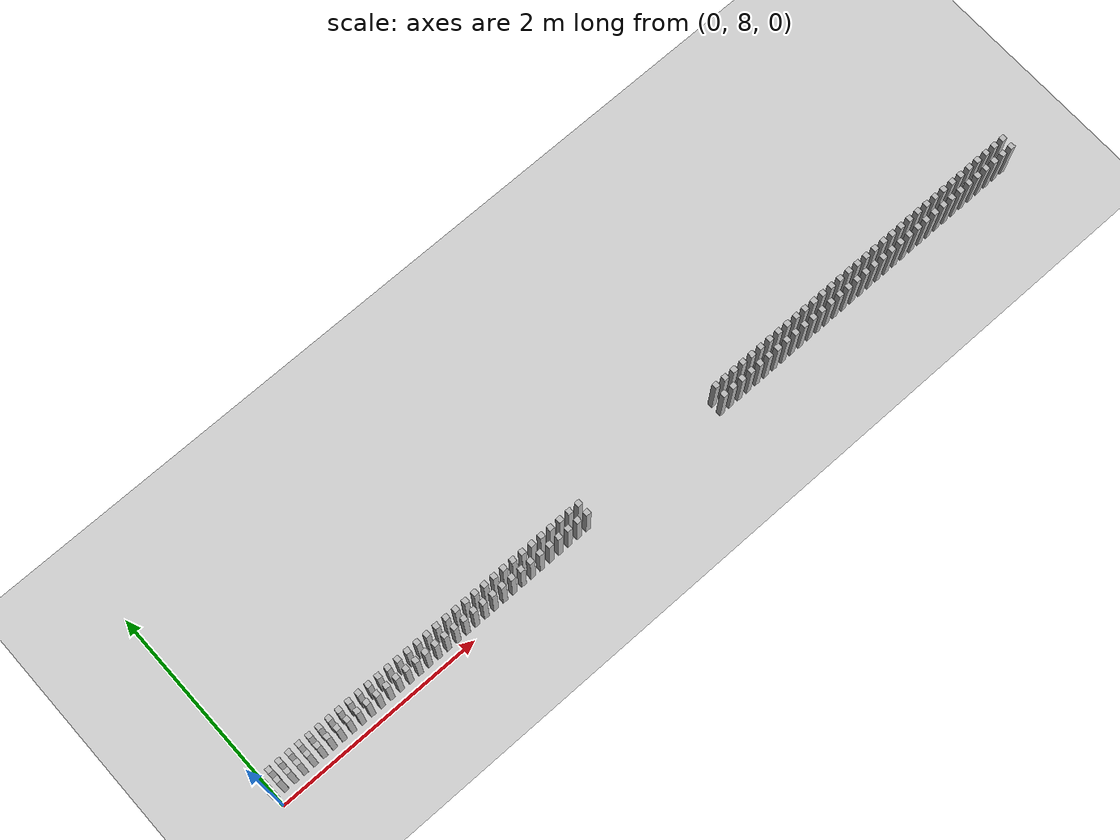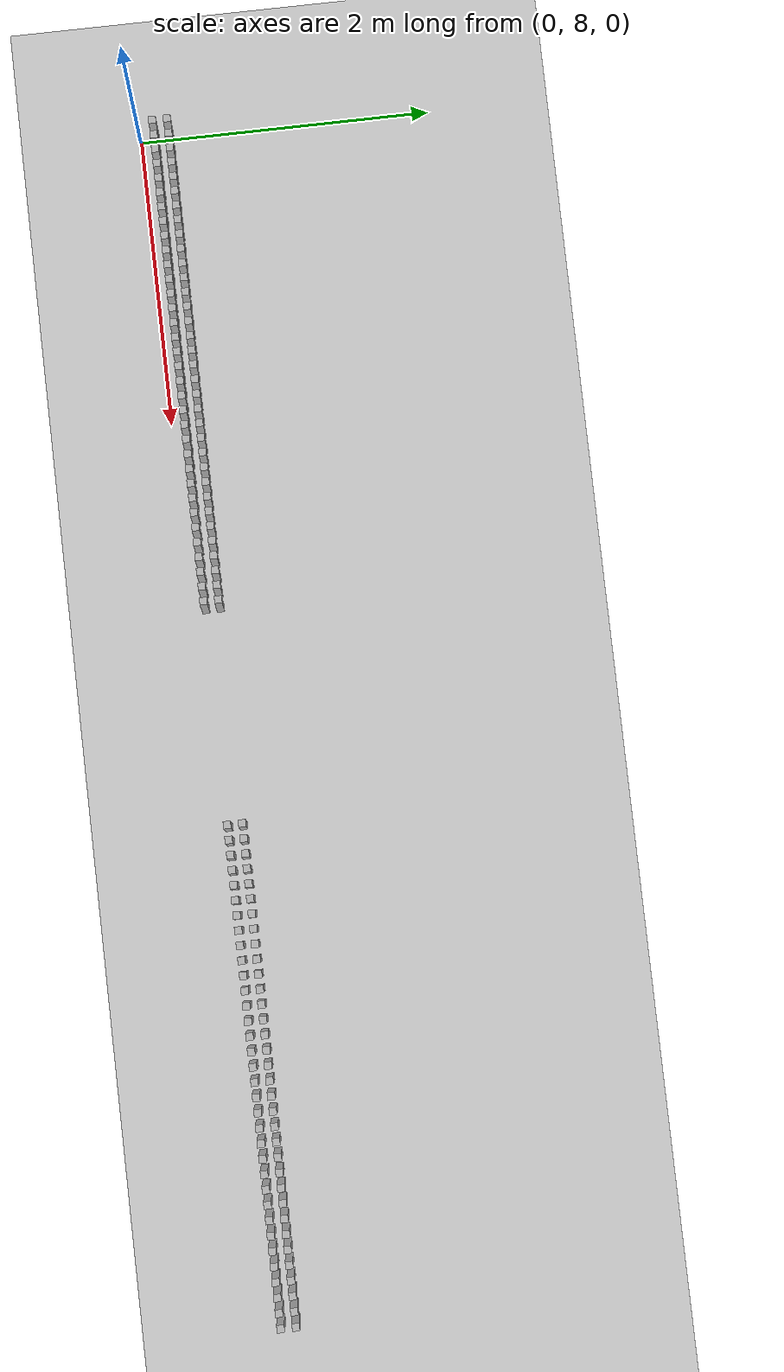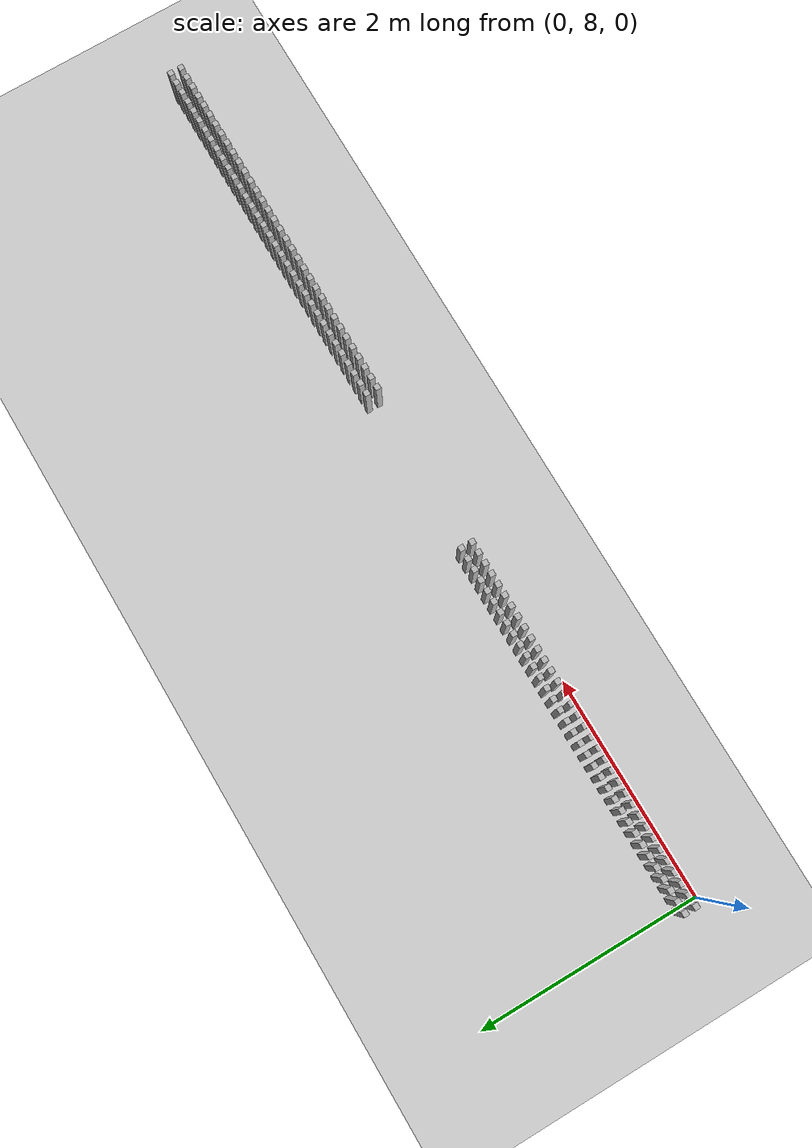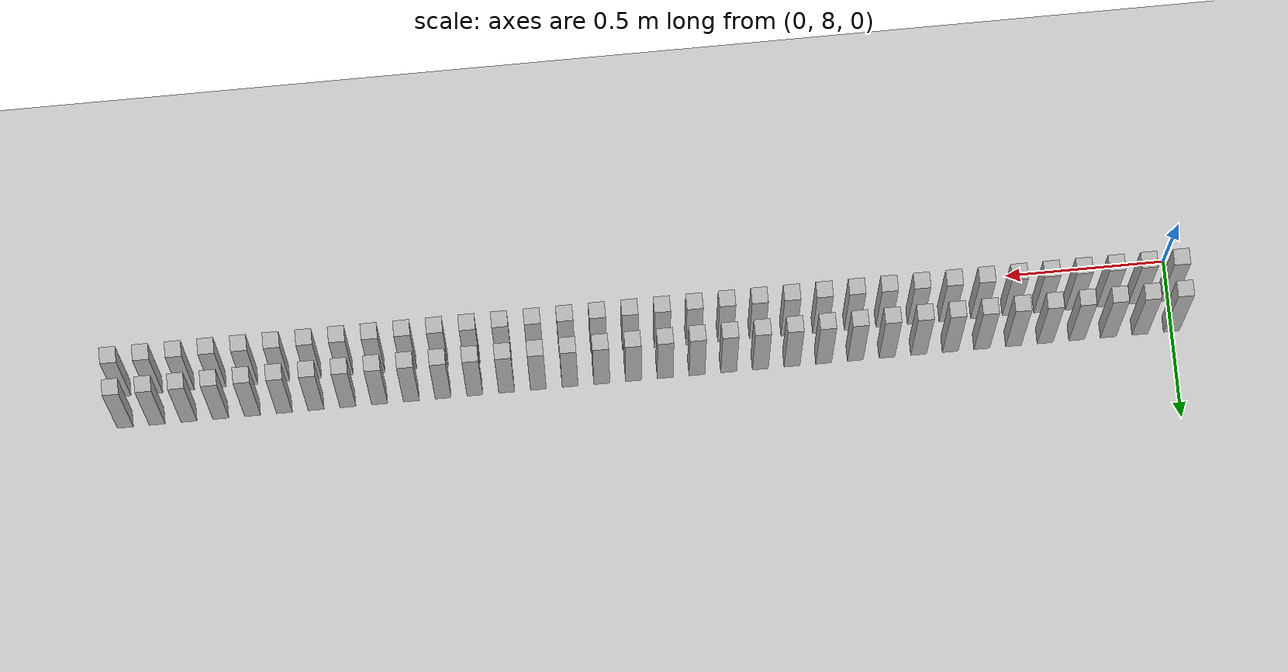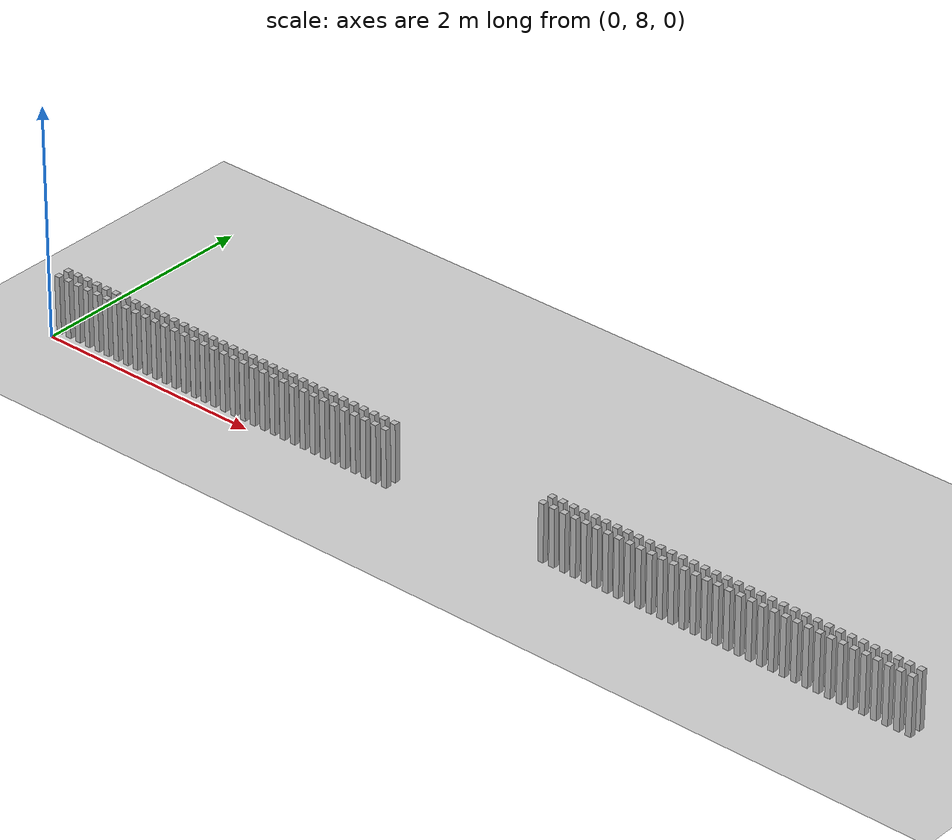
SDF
<sdf version="1.6">
 <world name="default_world">
  <include><uri>model://sun</uri></include>
  <include><uri>model://ground_plane</uri></include>
  <model name="wall_0">
   <static>true</static>
   <link name="link">
    <collision name="collision"><geometry><box><size>0.05 0.05 0.5</size></box></geometry></collision>
    <visual name="visual"><geometry><box><size>0.05 0.05 0.5</size></box></geometry></visual>
    <pose>0.0 8.200000000000001 0.25 0 0 0</pose>
   </link>
  </model>
  <model name="wall_1">
   <static>true</static>
   <link name="link">
    <collision name="collision"><geometry><box><size>0.05 0.05 0.5</size></box></geometry></collision>
    <visual name="visual"><geometry><box><size>0.05 0.05 0.5</size></box></geometry></visual>
    <pose>0.1 8.200000000000001 0.25 0 0 0</pose>
   </link>
  </model>
  <model name="wall_2">
   <static>true</static>
   <link name="link">
    <collision name="collision"><geometry><box><size>0.05 0.05 0.5</size></box></geometry></collision>
    <visual name="visual"><geometry><box><size>0.05 0.05 0.5</size></box></geometry></visual>
    <pose>0.2 8.200000000000001 0.25 0 0 0</pose>
   </link>
  </model>
  <model name="wall_3">
   <static>true</static>
   <link name="link">
    <collision name="collision"><geometry><box><size>0.05 0.05 0.5</size></box></geometry></collision>
    <visual name="visual"><geometry><box><size>0.05 0.05 0.5</size></box></geometry></visual>
    <pose>0.30000000000000004 8.200000000000001 0.25 0 0 0</pose>
   </link>
  </model>
  <model name="wall_4">
   <static>true</static>
   <link name="link">
    <collision name="collision"><geometry><box><size>0.05 0.05 0.5</size></box></geometry></collision>
    <visual name="visual"><geometry><box><size>0.05 0.05 0.5</size></box></geometry></visual>
    <pose>0.4 8.200000000000001 0.25 0 0 0</pose>
   </link>
  </model>
  <model name="wall_5">
   <static>true</static>
   <link name="link">
    <collision name="collision"><geometry><box><size>0.05 0.05 0.5</size></box></geometry></collision>
    <visual name="visual"><geometry><box><size>0.05 0.05 0.5</size></box></geometry></visual>
    <pose>0.5 8.200000000000001 0.25 0 0 0</pose>
   </link>
  </model>
  <model name="wall_6">
   <static>true</static>
   <link name="link">
    <collision name="collision"><geometry><box><size>0.05 0.05 0.5</size></box></geometry></collision>
    <visual name="visual"><geometry><box><size>0.05 0.05 0.5</size></box></geometry></visual>
    <pose>0.6000000000000001 8.200000000000001 0.25 0 0 0</pose>
   </link>
  </model>
  <model name="wall_7">
   <static>true</static>
   <link name="link">
    <collision name="collision"><geometry><box><size>0.05 0.05 0.5</size></box></geometry></collision>
    <visual name="visual"><geometry><box><size>0.05 0.05 0.5</size></box></geometry></visual>
    <pose>0.7000000000000001 8.200000000000001 0.25 0 0 0</pose>
   </link>
  </model>
  <model name="wall_8">
   <static>true</static>
   <link name="link">
    <collision name="collision"><geometry><box><size>0.05 0.05 0.5</size></box></geometry></collision>
    <visual name="visual"><geometry><box><size>0.05 0.05 0.5</size></box></geometry></visual>
    <pose>0.8 8.200000000000001 0.25 0 0 0</pose>
   </link>
  </model>
  <model name="wall_9">
   <static>true</static>
   <link name="link">
    <collision name="collision"><geometry><box><size>0.05 0.05 0.5</size></box></geometry></collision>
    <visual name="visual"><geometry><box><size>0.05 0.05 0.5</size></box></geometry></visual>
    <pose>0.9 8.200000000000001 0.25 0 0 0</pose>
   </link>
  </model>
  <model name="wall_10">
   <static>true</static>
   <link name="link">
    <collision name="collision"><geometry><box><size>0.05 0.05 0.5</size></box></geometry></collision>
    <visual name="visual"><geometry><box><size>0.05 0.05 0.5</size></box></geometry></visual>
    <pose>1.0 8.200000000000001 0.25 0 0 0</pose>
   </link>
  </model>
  <model name="wall_11">
   <static>true</static>
   <link name="link">
    <collision name="collision"><geometry><box><size>0.05 0.05 0.5</size></box></geometry></collision>
    <visual name="visual"><geometry><box><size>0.05 0.05 0.5</size></box></geometry></visual>
    <pose>1.1 8.200000000000001 0.25 0 0 0</pose>
   </link>
  </model>
  <model name="wall_12">
   <static>true</static>
   <link name="link">
    <collision name="collision"><geometry><box><size>0.05 0.05 0.5</size></box></geometry></collision>
    <visual name="visual"><geometry><box><size>0.05 0.05 0.5</size></box></geometry></visual>
    <pose>1.2000000000000002 8.200000000000001 0.25 0 0 0</pose>
   </link>
  </model>
  <model name="wall_13">
   <static>true</static>
   <link name="link">
    <collision name="collision"><geometry><box><size>0.05 0.05 0.5</size></box></geometry></collision>
    <visual name="visual"><geometry><box><size>0.05 0.05 0.5</size></box></geometry></visual>
    <pose>1.3 8.200000000000001 0.25 0 0 0</pose>
   </link>
  </model>
  <model name="wall_14">
   <static>true</static>
   <link name="link">
    <collision name="collision"><geometry><box><size>0.05 0.05 0.5</size></box></geometry></collision>
    <visual name="visual"><geometry><box><size>0.05 0.05 0.5</size></box></geometry></visual>
    <pose>1.4000000000000001 8.200000000000001 0.25 0 0 0</pose>
   </link>
  </model>
  <model name="wall_15">
   <static>true</static>
   <link name="link">
    <collision name="collision"><geometry><box><size>0.05 0.05 0.5</size></box></geometry></collision>
    <visual name="visual"><geometry><box><size>0.05 0.05 0.5</size></box></geometry></visual>
    <pose>1.5 8.200000000000001 0.25 0 0 0</pose>
   </link>
  </model>
  <model name="wall_16">
   <static>true</static>
   <link name="link">
    <collision name="collision"><geometry><box><size>0.05 0.05 0.5</size></box></geometry></collision>
    <visual name="visual"><geometry><box><size>0.05 0.05 0.5</size></box></geometry></visual>
    <pose>1.6 8.200000000000001 0.25 0 0 0</pose>
   </link>
  </model>
  <model name="wall_17">
   <static>true</static>
   <link name="link">
    <collision name="collision"><geometry><box><size>0.05 0.05 0.5</size></box></geometry></collision>
    <visual name="visual"><geometry><box><size>0.05 0.05 0.5</size></box></geometry></visual>
    <pose>1.7000000000000002 8.200000000000001 0.25 0 0 0</pose>
   </link>
  </model>
  <model name="wall_18">
   <static>true</static>
   <link name="link">
    <collision name="collision"><geometry><box><size>0.05 0.05 0.5</size></box></geometry></collision>
    <visual name="visual"><geometry><box><size>0.05 0.05 0.5</size></box></geometry></visual>
    <pose>1.8 8.200000000000001 0.25 0 0 0</pose>
   </link>
  </model>
  <model name="wall_19">
   <static>true</static>
   <link name="link">
    <collision name="collision"><geometry><box><size>0.05 0.05 0.5</size></box></geometry></collision>
    <visual name="visual"><geometry><box><size>0.05 0.05 0.5</size></box></geometry></visual>
    <pose>1.9000000000000001 8.200000000000001 0.25 0 0 0</pose>
   </link>
  </model>
  <model name="wall_20">
   <static>true</static>
   <link name="link">
    <collision name="collision"><geometry><box><size>0.05 0.05 0.5</size></box></geometry></collision>
    <visual name="visual"><geometry><box><size>0.05 0.05 0.5</size></box></geometry></visual>
    <pose>2.0 8.200000000000001 0.25 0 0 0</pose>
   </link>
  </model>
  <model name="wall_21">
   <static>true</static>
   <link name="link">
    <collision name="collision"><geometry><box><size>0.05 0.05 0.5</size></box></geometry></collision>
    <visual name="visual"><geometry><box><size>0.05 0.05 0.5</size></box></geometry></visual>
    <pose>2.1 8.200000000000001 0.25 0 0 0</pose>
   </link>
  </model>
  <model name="wall_22">
   <static>true</static>
   <link name="link">
    <collision name="collision"><geometry><box><size>0.05 0.05 0.5</size></box></geometry></collision>
    <visual name="visual"><geometry><box><size>0.05 0.05 0.5</size></box></geometry></visual>
    <pose>2.2 8.200000000000001 0.25 0 0 0</pose>
   </link>
  </model>
  <model name="wall_23">
   <static>true</static>
   <link name="link">
    <collision name="collision"><geometry><box><size>0.05 0.05 0.5</size></box></geometry></collision>
    <visual name="visual"><geometry><box><size>0.05 0.05 0.5</size></box></geometry></visual>
    <pose>2.3000000000000003 8.200000000000001 0.25 0 0 0</pose>
   </link>
  </model>
  <model name="wall_24">
   <static>true</static>
   <link name="link">
    <collision name="collision"><geometry><box><size>0.05 0.05 0.5</size></box></geometry></collision>
    <visual name="visual"><geometry><box><size>0.05 0.05 0.5</size></box></geometry></visual>
    <pose>2.4000000000000004 8.200000000000001 0.25 0 0 0</pose>
   </link>
  </model>
  <model name="wall_25">
   <static>true</static>
   <link name="link">
    <collision name="collision"><geometry><box><size>0.05 0.05 0.5</size></box></geometry></collision>
    <visual name="visual"><geometry><box><size>0.05 0.05 0.5</size></box></geometry></visual>
    <pose>2.5 8.200000000000001 0.25 0 0 0</pose>
   </link>
  </model>
  <model name="wall_26">
   <static>true</static>
   <link name="link">
    <collision name="collision"><geometry><box><size>0.05 0.05 0.5</size></box></geometry></collision>
    <visual name="visual"><geometry><box><size>0.05 0.05 0.5</size></box></geometry></visual>
    <pose>2.6 8.200000000000001 0.25 0 0 0</pose>
   </link>
  </model>
  <model name="wall_27">
   <static>true</static>
   <link name="link">
    <collision name="collision"><geometry><box><size>0.05 0.05 0.5</size></box></geometry></collision>
    <visual name="visual"><geometry><box><size>0.05 0.05 0.5</size></box></geometry></visual>
    <pose>2.7 8.200000000000001 0.25 0 0 0</pose>
   </link>
  </model>
  <model name="wall_28">
   <static>true</static>
   <link name="link">
    <collision name="collision"><geometry><box><size>0.05 0.05 0.5</size></box></geometry></collision>
    <visual name="visual"><geometry><box><size>0.05 0.05 0.5</size></box></geometry></visual>
    <pose>2.8000000000000003 8.200000000000001 0.25 0 0 0</pose>
   </link>
  </model>
  <model name="wall_29">
   <static>true</static>
   <link name="link">
    <collision name="collision"><geometry><box><size>0.05 0.05 0.5</size></box></geometry></collision>
    <visual name="visual"><geometry><box><size>0.05 0.05 0.5</size></box></geometry></visual>
    <pose>2.9000000000000004 8.200000000000001 0.25 0 0 0</pose>
   </link>
  </model>
  <model name="wall_30">
   <static>true</static>
   <link name="link">
    <collision name="collision"><geometry><box><size>0.05 0.05 0.5</size></box></geometry></collision>
    <visual name="visual"><geometry><box><size>0.05 0.05 0.5</size></box></geometry></visual>
    <pose>3.0 8.200000000000001 0.25 0 0 0</pose>
   </link>
  </model>
  <model name="wall_31">
   <static>true</static>
   <link name="link">
    <collision name="collision"><geometry><box><size>0.05 0.05 0.5</size></box></geometry></collision>
    <visual name="visual"><geometry><box><size>0.05 0.05 0.5</size></box></geometry></visual>
    <pose>3.1 8.200000000000001 0.25 0 0 0</pose>
   </link>
  </model>
  <model name="wall_32">
   <static>true</static>
   <link name="link">
    <collision name="collision"><geometry><box><size>0.05 0.05 0.5</size></box></geometry></collision>
    <visual name="visual"><geometry><box><size>0.05 0.05 0.5</size></box></geometry></visual>
    <pose>3.2 8.200000000000001 0.25 0 0 0</pose>
   </link>
  </model>
  <model name="wall_33">
   <static>true</static>
   <link name="link">
    <collision name="collision"><geometry><box><size>0.05 0.05 0.5</size></box></geometry></collision>
    <visual name="visual"><geometry><box><size>0.05 0.05 0.5</size></box></geometry></visual>
    <pose>3.3000000000000003 8.200000000000001 0.25 0 0 0</pose>
   </link>
  </model>
  <model name="wall_34">
   <static>true</static>
   <link name="link">
    <collision name="collision"><geometry><box><size>0.05 0.05 0.5</size></box></geometry></collision>
    <visual name="visual"><geometry><box><size>0.05 0.05 0.5</size></box></geometry></visual>
    <pose>4.800000000000001 8.200000000000001 0.25 0 0 0</pose>
   </link>
  </model>
  <model name="wall_35">
   <static>true</static>
   <link name="link">
    <collision name="collision"><geometry><box><size>0.05 0.05 0.5</size></box></geometry></collision>
    <visual name="visual"><geometry><box><size>0.05 0.05 0.5</size></box></geometry></visual>
    <pose>4.9 8.200000000000001 0.25 0 0 0</pose>
   </link>
  </model>
  <model name="wall_36">
   <static>true</static>
   <link name="link">
    <collision name="collision"><geometry><box><size>0.05 0.05 0.5</size></box></geometry></collision>
    <visual name="visual"><geometry><box><size>0.05 0.05 0.5</size></box></geometry></visual>
    <pose>5.0 8.200000000000001 0.25 0 0 0</pose>
   </link>
  </model>
  <model name="wall_37">
   <static>true</static>
   <link name="link">
    <collision name="collision"><geometry><box><size>0.05 0.05 0.5</size></box></geometry></collision>
    <visual name="visual"><geometry><box><size>0.05 0.05 0.5</size></box></geometry></visual>
    <pose>5.1000000000000005 8.200000000000001 0.25 0 0 0</pose>
   </link>
  </model>
  <model name="wall_38">
   <static>true</static>
   <link name="link">
    <collision name="collision"><geometry><box><size>0.05 0.05 0.5</size></box></geometry></collision>
    <visual name="visual"><geometry><box><size>0.05 0.05 0.5</size></box></geometry></visual>
    <pose>5.2 8.200000000000001 0.25 0 0 0</pose>
   </link>
  </model>
  <model name="wall_39">
   <static>true</static>
   <link name="link">
    <collision name="collision"><geometry><box><size>0.05 0.05 0.5</size></box></geometry></collision>
    <visual name="visual"><geometry><box><size>0.05 0.05 0.5</size></box></geometry></visual>
    <pose>5.300000000000001 8.200000000000001 0.25 0 0 0</pose>
   </link>
  </model>
  <model name="wall_40">
   <static>true</static>
   <link name="link">
    <collision name="collision"><geometry><box><size>0.05 0.05 0.5</size></box></geometry></collision>
    <visual name="visual"><geometry><box><size>0.05 0.05 0.5</size></box></geometry></visual>
    <pose>5.4 8.200000000000001 0.25 0 0 0</pose>
   </link>
  </model>
  <model name="wall_41">
   <static>true</static>
   <link name="link">
    <collision name="collision"><geometry><box><size>0.05 0.05 0.5</size></box></geometry></collision>
    <visual name="visual"><geometry><box><size>0.05 0.05 0.5</size></box></geometry></visual>
    <pose>5.5 8.200000000000001 0.25 0 0 0</pose>
   </link>
  </model>
  <model name="wall_42">
   <static>true</static>
   <link name="link">
    <collision name="collision"><geometry><box><size>0.05 0.05 0.5</size></box></geometry></collision>
    <visual name="visual"><geometry><box><size>0.05 0.05 0.5</size></box></geometry></visual>
    <pose>5.6000000000000005 8.200000000000001 0.25 0 0 0</pose>
   </link>
  </model>
  <model name="wall_43">
   <static>true</static>
   <link name="link">
    <collision name="collision"><geometry><box><size>0.05 0.05 0.5</size></box></geometry></collision>
    <visual name="visual"><geometry><box><size>0.05 0.05 0.5</size></box></geometry></visual>
    <pose>5.7 8.200000000000001 0.25 0 0 0</pose>
   </link>
  </model>
  <model name="wall_44">
   <static>true</static>
   <link name="link">
    <collision name="collision"><geometry><box><size>0.05 0.05 0.5</size></box></geometry></collision>
    <visual name="visual"><geometry><box><size>0.05 0.05 0.5</size></box></geometry></visual>
    <pose>5.800000000000001 8.200000000000001 0.25 0 0 0</pose>
   </link>
  </model>
  <model name="wall_45">
   <static>true</static>
   <link name="link">
    <collision name="collision"><geometry><box><size>0.05 0.05 0.5</size></box></geometry></collision>
    <visual name="visual"><geometry><box><size>0.05 0.05 0.5</size></box></geometry></visual>
    <pose>5.9 8.200000000000001 0.25 0 0 0</pose>
   </link>
  </model>
  <model name="wall_46">
   <static>true</static>
   <link name="link">
    <collision name="collision"><geometry><box><size>0.05 0.05 0.5</size></box></geometry></collision>
    <visual name="visual"><geometry><box><size>0.05 0.05 0.5</size></box></geometry></visual>
    <pose>6.0 8.200000000000001 0.25 0 0 0</pose>
   </link>
  </model>
  <model name="wall_47">
   <static>true</static>
   <link name="link">
    <collision name="collision"><geometry><box><size>0.05 0.05 0.5</size></box></geometry></collision>
    <visual name="visual"><geometry><box><size>0.05 0.05 0.5</size></box></geometry></visual>
    <pose>6.1000000000000005 8.200000000000001 0.25 0 0 0</pose>
   </link>
  </model>
  <model name="wall_48">
   <static>true</static>
   <link name="link">
    <collision name="collision"><geometry><box><size>0.05 0.05 0.5</size></box></geometry></collision>
    <visual name="visual"><geometry><box><size>0.05 0.05 0.5</size></box></geometry></visual>
    <pose>6.2 8.200000000000001 0.25 0 0 0</pose>
   </link>
  </model>
  <model name="wall_49">
   <static>true</static>
   <link name="link">
    <collision name="collision"><geometry><box><size>0.05 0.05 0.5</size></box></geometry></collision>
    <visual name="visual"><geometry><box><size>0.05 0.05 0.5</size></box></geometry></visual>
    <pose>6.300000000000001 8.200000000000001 0.25 0 0 0</pose>
   </link>
  </model>
  <model name="wall_50">
   <static>true</static>
   <link name="link">
    <collision name="collision"><geometry><box><size>0.05 0.05 0.5</size></box></geometry></collision>
    <visual name="visual"><geometry><box><size>0.05 0.05 0.5</size></box></geometry></visual>
    <pose>6.4 8.200000000000001 0.25 0 0 0</pose>
   </link>
  </model>
  <model name="wall_51">
   <static>true</static>
   <link name="link">
    <collision name="collision"><geometry><box><size>0.05 0.05 0.5</size></box></geometry></collision>
    <visual name="visual"><geometry><box><size>0.05 0.05 0.5</size></box></geometry></visual>
    <pose>6.5 8.200000000000001 0.25 0 0 0</pose>
   </link>
  </model>
  <model name="wall_52">
   <static>true</static>
   <link name="link">
    <collision name="collision"><geometry><box><size>0.05 0.05 0.5</size></box></geometry></collision>
    <visual name="visual"><geometry><box><size>0.05 0.05 0.5</size></box></geometry></visual>
    <pose>6.6000000000000005 8.200000000000001 0.25 0 0 0</pose>
   </link>
  </model>
  <model name="wall_53">
   <static>true</static>
   <link name="link">
    <collision name="collision"><geometry><box><size>0.05 0.05 0.5</size></box></geometry></collision>
    <visual name="visual"><geometry><box><size>0.05 0.05 0.5</size></box></geometry></visual>
    <pose>6.7 8.200000000000001 0.25 0 0 0</pose>
   </link>
  </model>
  <model name="wall_54">
   <static>true</static>
   <link name="link">
    <collision name="collision"><geometry><box><size>0.05 0.05 0.5</size></box></geometry></collision>
    <visual name="visual"><geometry><box><size>0.05 0.05 0.5</size></box></geometry></visual>
    <pose>6.800000000000001 8.200000000000001 0.25 0 0 0</pose>
   </link>
  </model>
  <model name="wall_55">
   <static>true</static>
   <link name="link">
    <collision name="collision"><geometry><box><size>0.05 0.05 0.5</size></box></geometry></collision>
    <visual name="visual"><geometry><box><size>0.05 0.05 0.5</size></box></geometry></visual>
    <pose>6.9 8.200000000000001 0.25 0 0 0</pose>
   </link>
  </model>
  <model name="wall_56">
   <static>true</static>
   <link name="link">
    <collision name="collision"><geometry><box><size>0.05 0.05 0.5</size></box></geometry></collision>
    <visual name="visual"><geometry><box><size>0.05 0.05 0.5</size></box></geometry></visual>
    <pose>7.0 8.200000000000001 0.25 0 0 0</pose>
   </link>
  </model>
  <model name="wall_57">
   <static>true</static>
   <link name="link">
    <collision name="collision"><geometry><box><size>0.05 0.05 0.5</size></box></geometry></collision>
    <visual name="visual"><geometry><box><size>0.05 0.05 0.5</size></box></geometry></visual>
    <pose>7.1000000000000005 8.200000000000001 0.25 0 0 0</pose>
   </link>
  </model>
  <model name="wall_58">
   <static>true</static>
   <link name="link">
    <collision name="collision"><geometry><box><size>0.05 0.05 0.5</size></box></geometry></collision>
    <visual name="visual"><geometry><box><size>0.05 0.05 0.5</size></box></geometry></visual>
    <pose>7.2 8.200000000000001 0.25 0 0 0</pose>
   </link>
  </model>
  <model name="wall_59">
   <static>true</static>
   <link name="link">
    <collision name="collision"><geometry><box><size>0.05 0.05 0.5</size></box></geometry></collision>
    <visual name="visual"><geometry><box><size>0.05 0.05 0.5</size></box></geometry></visual>
    <pose>7.300000000000001 8.200000000000001 0.25 0 0 0</pose>
   </link>
  </model>
  <model name="wall_60">
   <static>true</static>
   <link name="link">
    <collision name="collision"><geometry><box><size>0.05 0.05 0.5</size></box></geometry></collision>
    <visual name="visual"><geometry><box><size>0.05 0.05 0.5</size></box></geometry></visual>
    <pose>7.4 8.200000000000001 0.25 0 0 0</pose>
   </link>
  </model>
  <model name="wall_61">
   <static>true</static>
   <link name="link">
    <collision name="collision"><geometry><box><size>0.05 0.05 0.5</size></box></geometry></collision>
    <visual name="visual"><geometry><box><size>0.05 0.05 0.5</size></box></geometry></visual>
    <pose>7.5 8.200000000000001 0.25 0 0 0</pose>
   </link>
  </model>
  <model name="wall_62">
   <static>true</static>
   <link name="link">
    <collision name="collision"><geometry><box><size>0.05 0.05 0.5</size></box></geometry></collision>
    <visual name="visual"><geometry><box><size>0.05 0.05 0.5</size></box></geometry></visual>
    <pose>7.6000000000000005 8.200000000000001 0.25 0 0 0</pose>
   </link>
  </model>
  <model name="wall_63">
   <static>true</static>
   <link name="link">
    <collision name="collision"><geometry><box><size>0.05 0.05 0.5</size></box></geometry></collision>
    <visual name="visual"><geometry><box><size>0.05 0.05 0.5</size></box></geometry></visual>
    <pose>7.7 8.200000000000001 0.25 0 0 0</pose>
   </link>
  </model>
  <model name="wall_64">
   <static>true</static>
   <link name="link">
    <collision name="collision"><geometry><box><size>0.05 0.05 0.5</size></box></geometry></collision>
    <visual name="visual"><geometry><box><size>0.05 0.05 0.5</size></box></geometry></visual>
    <pose>7.800000000000001 8.200000000000001 0.25 0 0 0</pose>
   </link>
  </model>
  <model name="wall_65">
   <static>true</static>
   <link name="link">
    <collision name="collision"><geometry><box><size>0.05 0.05 0.5</size></box></geometry></collision>
    <visual name="visual"><geometry><box><size>0.05 0.05 0.5</size></box></geometry></visual>
    <pose>7.9 8.200000000000001 0.25 0 0 0</pose>
   </link>
  </model>
  <model name="wall_66">
   <static>true</static>
   <link name="link">
    <collision name="collision"><geometry><box><size>0.05 0.05 0.5</size></box></geometry></collision>
    <visual name="visual"><geometry><box><size>0.05 0.05 0.5</size></box></geometry></visual>
    <pose>8.0 8.200000000000001 0.25 0 0 0</pose>
   </link>
  </model>
  <model name="wall_67">
   <static>true</static>
   <link name="link">
    <collision name="collision"><geometry><box><size>0.05 0.05 0.5</size></box></geometry></collision>
    <visual name="visual"><geometry><box><size>0.05 0.05 0.5</size></box></geometry></visual>
    <pose>8.1 8.200000000000001 0.25 0 0 0</pose>
   </link>
  </model>
  <model name="wall_68">
   <static>true</static>
   <link name="link">
    <collision name="collision"><geometry><box><size>0.05 0.05 0.5</size></box></geometry></collision>
    <visual name="visual"><geometry><box><size>0.05 0.05 0.5</size></box></geometry></visual>
    <pose>0.0 8.1 0.25 0 0 0</pose>
   </link>
  </model>
  <model name="wall_69">
   <static>true</static>
   <link name="link">
    <collision name="collision"><geometry><box><size>0.05 0.05 0.5</size></box></geometry></collision>
    <visual name="visual"><geometry><box><size>0.05 0.05 0.5</size></box></geometry></visual>
    <pose>0.1 8.1 0.25 0 0 0</pose>
   </link>
  </model>
  <model name="wall_70">
   <static>true</static>
   <link name="link">
    <collision name="collision"><geometry><box><size>0.05 0.05 0.5</size></box></geometry></collision>
    <visual name="visual"><geometry><box><size>0.05 0.05 0.5</size></box></geometry></visual>
    <pose>0.2 8.1 0.25 0 0 0</pose>
   </link>
  </model>
  <model name="wall_71">
   <static>true</static>
   <link name="link">
    <collision name="collision"><geometry><box><size>0.05 0.05 0.5</size></box></geometry></collision>
    <visual name="visual"><geometry><box><size>0.05 0.05 0.5</size></box></geometry></visual>
    <pose>0.30000000000000004 8.1 0.25 0 0 0</pose>
   </link>
  </model>
  <model name="wall_72">
   <static>true</static>
   <link name="link">
    <collision name="collision"><geometry><box><size>0.05 0.05 0.5</size></box></geometry></collision>
    <visual name="visual"><geometry><box><size>0.05 0.05 0.5</size></box></geometry></visual>
    <pose>0.4 8.1 0.25 0 0 0</pose>
   </link>
  </model>
  <model name="wall_73">
   <static>true</static>
   <link name="link">
    <collision name="collision"><geometry><box><size>0.05 0.05 0.5</size></box></geometry></collision>
    <visual name="visual"><geometry><box><size>0.05 0.05 0.5</size></box></geometry></visual>
    <pose>0.5 8.1 0.25 0 0 0</pose>
   </link>
  </model>
  <model name="wall_74">
   <static>true</static>
   <link name="link">
    <collision name="collision"><geometry><box><size>0.05 0.05 0.5</size></box></geometry></collision>
    <visual name="visual"><geometry><box><size>0.05 0.05 0.5</size></box></geometry></visual>
    <pose>0.6000000000000001 8.1 0.25 0 0 0</pose>
   </link>
  </model>
  <model name="wall_75">
   <static>true</static>
   <link name="link">
    <collision name="collision"><geometry><box><size>0.05 0.05 0.5</size></box></geometry></collision>
    <visual name="visual"><geometry><box><size>0.05 0.05 0.5</size></box></geometry></visual>
    <pose>0.7000000000000001 8.1 0.25 0 0 0</pose>
   </link>
  </model>
  <model name="wall_76">
   <static>true</static>
   <link name="link">
    <collision name="collision"><geometry><box><size>0.05 0.05 0.5</size></box></geometry></collision>
    <visual name="visual"><geometry><box><size>0.05 0.05 0.5</size></box></geometry></visual>
    <pose>0.8 8.1 0.25 0 0 0</pose>
   </link>
  </model>
  <model name="wall_77">
   <static>true</static>
   <link name="link">
    <collision name="collision"><geometry><box><size>0.05 0.05 0.5</size></box></geometry></collision>
    <visual name="visual"><geometry><box><size>0.05 0.05 0.5</size></box></geometry></visual>
    <pose>0.9 8.1 0.25 0 0 0</pose>
   </link>
  </model>
  <model name="wall_78">
   <static>true</static>
   <link name="link">
    <collision name="collision"><geometry><box><size>0.05 0.05 0.5</size></box></geometry></collision>
    <visual name="visual"><geometry><box><size>0.05 0.05 0.5</size></box></geometry></visual>
    <pose>1.0 8.1 0.25 0 0 0</pose>
   </link>
  </model>
  <model name="wall_79">
   <static>true</static>
   <link name="link">
    <collision name="collision"><geometry><box><size>0.05 0.05 0.5</size></box></geometry></collision>
    <visual name="visual"><geometry><box><size>0.05 0.05 0.5</size></box></geometry></visual>
    <pose>1.1 8.1 0.25 0 0 0</pose>
   </link>
  </model>
  <model name="wall_80">
   <static>true</static>
   <link name="link">
    <collision name="collision"><geometry><box><size>0.05 0.05 0.5</size></box></geometry></collision>
    <visual name="visual"><geometry><box><size>0.05 0.05 0.5</size></box></geometry></visual>
    <pose>1.2000000000000002 8.1 0.25 0 0 0</pose>
   </link>
  </model>
  <model name="wall_81">
   <static>true</static>
   <link name="link">
    <collision name="collision"><geometry><box><size>0.05 0.05 0.5</size></box></geometry></collision>
    <visual name="visual"><geometry><box><size>0.05 0.05 0.5</size></box></geometry></visual>
    <pose>1.3 8.1 0.25 0 0 0</pose>
   </link>
  </model>
  <model name="wall_82">
   <static>true</static>
   <link name="link">
    <collision name="collision"><geometry><box><size>0.05 0.05 0.5</size></box></geometry></collision>
    <visual name="visual"><geometry><box><size>0.05 0.05 0.5</size></box></geometry></visual>
    <pose>1.4000000000000001 8.1 0.25 0 0 0</pose>
   </link>
  </model>
  <model name="wall_83">
   <static>true</static>
   <link name="link">
    <collision name="collision"><geometry><box><size>0.05 0.05 0.5</size></box></geometry></collision>
    <visual name="visual"><geometry><box><size>0.05 0.05 0.5</size></box></geometry></visual>
    <pose>1.5 8.1 0.25 0 0 0</pose>
   </link>
  </model>
  <model name="wall_84">
   <static>true</static>
   <link name="link">
    <collision name="collision"><geometry><box><size>0.05 0.05 0.5</size></box></geometry></collision>
    <visual name="visual"><geometry><box><size>0.05 0.05 0.5</size></box></geometry></visual>
    <pose>1.6 8.1 0.25 0 0 0</pose>
   </link>
  </model>
  <model name="wall_85">
   <static>true</static>
   <link name="link">
    <collision name="collision"><geometry><box><size>0.05 0.05 0.5</size></box></geometry></collision>
    <visual name="visual"><geometry><box><size>0.05 0.05 0.5</size></box></geometry></visual>
    <pose>1.7000000000000002 8.1 0.25 0 0 0</pose>
   </link>
  </model>
  <model name="wall_86">
   <static>true</static>
   <link name="link">
    <collision name="collision"><geometry><box><size>0.05 0.05 0.5</size></box></geometry></collision>
    <visual name="visual"><geometry><box><size>0.05 0.05 0.5</size></box></geometry></visual>
    <pose>1.8 8.1 0.25 0 0 0</pose>
   </link>
  </model>
  <model name="wall_87">
   <static>true</static>
   <link name="link">
    <collision name="collision"><geometry><box><size>0.05 0.05 0.5</size></box></geometry></collision>
    <visual name="visual"><geometry><box><size>0.05 0.05 0.5</size></box></geometry></visual>
    <pose>1.9000000000000001 8.1 0.25 0 0 0</pose>
   </link>
  </model>
  <model name="wall_88">
   <static>true</static>
   <link name="link">
    <collision name="collision"><geometry><box><size>0.05 0.05 0.5</size></box></geometry></collision>
    <visual name="visual"><geometry><box><size>0.05 0.05 0.5</size></box></geometry></visual>
    <pose>2.0 8.1 0.25 0 0 0</pose>
   </link>
  </model>
  <model name="wall_89">
   <static>true</static>
   <link name="link">
    <collision name="collision"><geometry><box><size>0.05 0.05 0.5</size></box></geometry></collision>
    <visual name="visual"><geometry><box><size>0.05 0.05 0.5</size></box></geometry></visual>
    <pose>2.1 8.1 0.25 0 0 0</pose>
   </link>
  </model>
  <model name="wall_90">
   <static>true</static>
   <link name="link">
    <collision name="collision"><geometry><box><size>0.05 0.05 0.5</size></box></geometry></collision>
    <visual name="visual"><geometry><box><size>0.05 0.05 0.5</size></box></geometry></visual>
    <pose>2.2 8.1 0.25 0 0 0</pose>
   </link>
  </model>
  <model name="wall_91">
   <static>true</static>
   <link name="link">
    <collision name="collision"><geometry><box><size>0.05 0.05 0.5</size></box></geometry></collision>
    <visual name="visual"><geometry><box><size>0.05 0.05 0.5</size></box></geometry></visual>
    <pose>2.3000000000000003 8.1 0.25 0 0 0</pose>
   </link>
  </model>
  <model name="wall_92">
   <static>true</static>
   <link name="link">
    <collision name="collision"><geometry><box><size>0.05 0.05 0.5</size></box></geometry></collision>
    <visual name="visual"><geometry><box><size>0.05 0.05 0.5</size></box></geometry></visual>
    <pose>2.4000000000000004 8.1 0.25 0 0 0</pose>
   </link>
  </model>
  <model name="wall_93">
   <static>true</static>
   <link name="link">
    <collision name="collision"><geometry><box><size>0.05 0.05 0.5</size></box></geometry></collision>
    <visual name="visual"><geometry><box><size>0.05 0.05 0.5</size></box></geometry></visual>
    <pose>2.5 8.1 0.25 0 0 0</pose>
   </link>
  </model>
  <model name="wall_94">
   <static>true</static>
   <link name="link">
    <collision name="collision"><geometry><box><size>0.05 0.05 0.5</size></box></geometry></collision>
    <visual name="visual"><geometry><box><size>0.05 0.05 0.5</size></box></geometry></visual>
    <pose>2.6 8.1 0.25 0 0 0</pose>
   </link>
  </model>
  <model name="wall_95">
   <static>true</static>
   <link name="link">
    <collision name="collision"><geometry><box><size>0.05 0.05 0.5</size></box></geometry></collision>
    <visual name="visual"><geometry><box><size>0.05 0.05 0.5</size></box></geometry></visual>
    <pose>2.7 8.1 0.25 0 0 0</pose>
   </link>
  </model>
  <model name="wall_96">
   <static>true</static>
   <link name="link">
    <collision name="collision"><geometry><box><size>0.05 0.05 0.5</size></box></geometry></collision>
    <visual name="visual"><geometry><box><size>0.05 0.05 0.5</size></box></geometry></visual>
    <pose>2.8000000000000003 8.1 0.25 0 0 0</pose>
   </link>
  </model>
  <model name="wall_97">
   <static>true</static>
   <link name="link">
    <collision name="collision"><geometry><box><size>0.05 0.05 0.5</size></box></geometry></collision>
    <visual name="visual"><geometry><box><size>0.05 0.05 0.5</size></box></geometry></visual>
    <pose>2.9000000000000004 8.1 0.25 0 0 0</pose>
   </link>
  </model>
  <model name="wall_98">
   <static>true</static>
   <link name="link">
    <collision name="collision"><geometry><box><size>0.05 0.05 0.5</size></box></geometry></collision>
    <visual name="visual"><geometry><box><size>0.05 0.05 0.5</size></box></geometry></visual>
    <pose>3.0 8.1 0.25 0 0 0</pose>
   </link>
  </model>
  <model name="wall_99">
   <static>true</static>
   <link name="link">
    <collision name="collision"><geometry><box><size>0.05 0.05 0.5</size></box></geometry></collision>
    <visual name="visual"><geometry><box><size>0.05 0.05 0.5</size></box></geometry></visual>
    <pose>3.1 8.1 0.25 0 0 0</pose>
   </link>
  </model>
  <model name="wall_100">
   <static>true</static>
   <link name="link">
    <collision name="collision"><geometry><box><size>0.05 0.05 0.5</size></box></geometry></collision>
    <visual name="visual"><geometry><box><size>0.05 0.05 0.5</size></box></geometry></visual>
    <pose>3.2 8.1 0.25 0 0 0</pose>
   </link>
  </model>
  <model name="wall_101">
   <static>true</static>
   <link name="link">
    <collision name="collision"><geometry><box><size>0.05 0.05 0.5</size></box></geometry></collision>
    <visual name="visual"><geometry><box><size>0.05 0.05 0.5</size></box></geometry></visual>
    <pose>3.3000000000000003 8.1 0.25 0 0 0</pose>
   </link>
  </model>
  <model name="wall_102">
   <static>true</static>
   <link name="link">
    <collision name="collision"><geometry><box><size>0.05 0.05 0.5</size></box></geometry></collision>
    <visual name="visual"><geometry><box><size>0.05 0.05 0.5</size></box></geometry></visual>
    <pose>4.800000000000001 8.1 0.25 0 0 0</pose>
   </link>
  </model>
  <model name="wall_103">
   <static>true</static>
   <link name="link">
    <collision name="collision"><geometry><box><size>0.05 0.05 0.5</size></box></geometry></collision>
    <visual name="visual"><geometry><box><size>0.05 0.05 0.5</size></box></geometry></visual>
    <pose>4.9 8.1 0.25 0 0 0</pose>
   </link>
  </model>
  <model name="wall_104">
   <static>true</static>
   <link name="link">
    <collision name="collision"><geometry><box><size>0.05 0.05 0.5</size></box></geometry></collision>
    <visual name="visual"><geometry><box><size>0.05 0.05 0.5</size></box></geometry></visual>
    <pose>5.0 8.1 0.25 0 0 0</pose>
   </link>
  </model>
  <model name="wall_105">
   <static>true</static>
   <link name="link">
    <collision name="collision"><geometry><box><size>0.05 0.05 0.5</size></box></geometry></collision>
    <visual name="visual"><geometry><box><size>0.05 0.05 0.5</size></box></geometry></visual>
    <pose>5.1000000000000005 8.1 0.25 0 0 0</pose>
   </link>
  </model>
  <model name="wall_106">
   <static>true</static>
   <link name="link">
    <collision name="collision"><geometry><box><size>0.05 0.05 0.5</size></box></geometry></collision>
    <visual name="visual"><geometry><box><size>0.05 0.05 0.5</size></box></geometry></visual>
    <pose>5.2 8.1 0.25 0 0 0</pose>
   </link>
  </model>
  <model name="wall_107">
   <static>true</static>
   <link name="link">
    <collision name="collision"><geometry><box><size>0.05 0.05 0.5</size></box></geometry></collision>
    <visual name="visual"><geometry><box><size>0.05 0.05 0.5</size></box></geometry></visual>
    <pose>5.300000000000001 8.1 0.25 0 0 0</pose>
   </link>
  </model>
  <model name="wall_108">
   <static>true</static>
   <link name="link">
    <collision name="collision"><geometry><box><size>0.05 0.05 0.5</size></box></geometry></collision>
    <visual name="visual"><geometry><box><size>0.05 0.05 0.5</size></box></geometry></visual>
    <pose>5.4 8.1 0.25 0 0 0</pose>
   </link>
  </model>
  <model name="wall_109">
   <static>true</static>
   <link name="link">
    <collision name="collision"><geometry><box><size>0.05 0.05 0.5</size></box></geometry></collision>
    <visual name="visual"><geometry><box><size>0.05 0.05 0.5</size></box></geometry></visual>
    <pose>5.5 8.1 0.25 0 0 0</pose>
   </link>
  </model>
  <model name="wall_110">
   <static>true</static>
   <link name="link">
    <collision name="collision"><geometry><box><size>0.05 0.05 0.5</size></box></geometry></collision>
    <visual name="visual"><geometry><box><size>0.05 0.05 0.5</size></box></geometry></visual>
    <pose>5.6000000000000005 8.1 0.25 0 0 0</pose>
   </link>
  </model>
  <model name="wall_111">
   <static>true</static>
   <link name="link">
    <collision name="collision"><geometry><box><size>0.05 0.05 0.5</size></box></geometry></collision>
    <visual name="visual"><geometry><box><size>0.05 0.05 0.5</size></box></geometry></visual>
    <pose>5.7 8.1 0.25 0 0 0</pose>
   </link>
  </model>
  <model name="wall_112">
   <static>true</static>
   <link name="link">
    <collision name="collision"><geometry><box><size>0.05 0.05 0.5</size></box></geometry></collision>
    <visual name="visual"><geometry><box><size>0.05 0.05 0.5</size></box></geometry></visual>
    <pose>5.800000000000001 8.1 0.25 0 0 0</pose>
   </link>
  </model>
  <model name="wall_113">
   <static>true</static>
   <link name="link">
    <collision name="collision"><geometry><box><size>0.05 0.05 0.5</size></box></geometry></collision>
    <visual name="visual"><geometry><box><size>0.05 0.05 0.5</size></box></geometry></visual>
    <pose>5.9 8.1 0.25 0 0 0</pose>
   </link>
  </model>
  <model name="wall_114">
   <static>true</static>
   <link name="link">
    <collision name="collision"><geometry><box><size>0.05 0.05 0.5</size></box></geometry></collision>
    <visual name="visual"><geometry><box><size>0.05 0.05 0.5</size></box></geometry></visual>
    <pose>6.0 8.1 0.25 0 0 0</pose>
   </link>
  </model>
  <model name="wall_115">
   <static>true</static>
   <link name="link">
    <collision name="collision"><geometry><box><size>0.05 0.05 0.5</size></box></geometry></collision>
    <visual name="visual"><geometry><box><size>0.05 0.05 0.5</size></box></geometry></visual>
    <pose>6.1000000000000005 8.1 0.25 0 0 0</pose>
   </link>
  </model>
  <model name="wall_116">
   <static>true</static>
   <link name="link">
    <collision name="collision"><geometry><box><size>0.05 0.05 0.5</size></box></geometry></collision>
    <visual name="visual"><geometry><box><size>0.05 0.05 0.5</size></box></geometry></visual>
    <pose>6.2 8.1 0.25 0 0 0</pose>
   </link>
  </model>
  <model name="wall_117">
   <static>true</static>
   <link name="link">
    <collision name="collision"><geometry><box><size>0.05 0.05 0.5</size></box></geometry></collision>
    <visual name="visual"><geometry><box><size>0.05 0.05 0.5</size></box></geometry></visual>
    <pose>6.300000000000001 8.1 0.25 0 0 0</pose>
   </link>
  </model>
  <model name="wall_118">
   <static>true</static>
   <link name="link">
    <collision name="collision"><geometry><box><size>0.05 0.05 0.5</size></box></geometry></collision>
    <visual name="visual"><geometry><box><size>0.05 0.05 0.5</size></box></geometry></visual>
    <pose>6.4 8.1 0.25 0 0 0</pose>
   </link>
  </model>
  <model name="wall_119">
   <static>true</static>
   <link name="link">
    <collision name="collision"><geometry><box><size>0.05 0.05 0.5</size></box></geometry></collision>
    <visual name="visual"><geometry><box><size>0.05 0.05 0.5</size></box></geometry></visual>
    <pose>6.5 8.1 0.25 0 0 0</pose>
   </link>
  </model>
  <model name="wall_120">
   <static>true</static>
   <link name="link">
    <collision name="collision"><geometry><box><size>0.05 0.05 0.5</size></box></geometry></collision>
    <visual name="visual"><geometry><box><size>0.05 0.05 0.5</size></box></geometry></visual>
    <pose>6.6000000000000005 8.1 0.25 0 0 0</pose>
   </link>
  </model>
  <model name="wall_121">
   <static>true</static>
   <link name="link">
    <collision name="collision"><geometry><box><size>0.05 0.05 0.5</size></box></geometry></collision>
    <visual name="visual"><geometry><box><size>0.05 0.05 0.5</size></box></geometry></visual>
    <pose>6.7 8.1 0.25 0 0 0</pose>
   </link>
  </model>
  <model name="wall_122">
   <static>true</static>
   <link name="link">
    <collision name="collision"><geometry><box><size>0.05 0.05 0.5</size></box></geometry></collision>
    <visual name="visual"><geometry><box><size>0.05 0.05 0.5</size></box></geometry></visual>
    <pose>6.800000000000001 8.1 0.25 0 0 0</pose>
   </link>
  </model>
  <model name="wall_123">
   <static>true</static>
   <link name="link">
    <collision name="collision"><geometry><box><size>0.05 0.05 0.5</size></box></geometry></collision>
    <visual name="visual"><geometry><box><size>0.05 0.05 0.5</size></box></geometry></visual>
    <pose>6.9 8.1 0.25 0 0 0</pose>
   </link>
  </model>
  <model name="wall_124">
   <static>true</static>
   <link name="link">
    <collision name="collision"><geometry><box><size>0.05 0.05 0.5</size></box></geometry></collision>
    <visual name="visual"><geometry><box><size>0.05 0.05 0.5</size></box></geometry></visual>
    <pose>7.0 8.1 0.25 0 0 0</pose>
   </link>
  </model>
  <model name="wall_125">
   <static>true</static>
   <link name="link">
    <collision name="collision"><geometry><box><size>0.05 0.05 0.5</size></box></geometry></collision>
    <visual name="visual"><geometry><box><size>0.05 0.05 0.5</size></box></geometry></visual>
    <pose>7.1000000000000005 8.1 0.25 0 0 0</pose>
   </link>
  </model>
  <model name="wall_126">
   <static>true</static>
   <link name="link">
    <collision name="collision"><geometry><box><size>0.05 0.05 0.5</size></box></geometry></collision>
    <visual name="visual"><geometry><box><size>0.05 0.05 0.5</size></box></geometry></visual>
    <pose>7.2 8.1 0.25 0 0 0</pose>
   </link>
  </model>
  <model name="wall_127">
   <static>true</static>
   <link name="link">
    <collision name="collision"><geometry><box><size>0.05 0.05 0.5</size></box></geometry></collision>
    <visual name="visual"><geometry><box><size>0.05 0.05 0.5</size></box></geometry></visual>
    <pose>7.300000000000001 8.1 0.25 0 0 0</pose>
   </link>
  </model>
  <model name="wall_128">
   <static>true</static>
   <link name="link">
    <collision name="collision"><geometry><box><size>0.05 0.05 0.5</size></box></geometry></collision>
    <visual name="visual"><geometry><box><size>0.05 0.05 0.5</size></box></geometry></visual>
    <pose>7.4 8.1 0.25 0 0 0</pose>
   </link>
  </model>
  <model name="wall_129">
   <static>true</static>
   <link name="link">
    <collision name="collision"><geometry><box><size>0.05 0.05 0.5</size></box></geometry></collision>
    <visual name="visual"><geometry><box><size>0.05 0.05 0.5</size></box></geometry></visual>
    <pose>7.5 8.1 0.25 0 0 0</pose>
   </link>
  </model>
  <model name="wall_130">
   <static>true</static>
   <link name="link">
    <collision name="collision"><geometry><box><size>0.05 0.05 0.5</size></box></geometry></collision>
    <visual name="visual"><geometry><box><size>0.05 0.05 0.5</size></box></geometry></visual>
    <pose>7.6000000000000005 8.1 0.25 0 0 0</pose>
   </link>
  </model>
  <model name="wall_131">
   <static>true</static>
   <link name="link">
    <collision name="collision"><geometry><box><size>0.05 0.05 0.5</size></box></geometry></collision>
    <visual name="visual"><geometry><box><size>0.05 0.05 0.5</size></box></geometry></visual>
    <pose>7.7 8.1 0.25 0 0 0</pose>
   </link>
  </model>
  <model name="wall_132">
   <static>true</static>
   <link name="link">
    <collision name="collision"><geometry><box><size>0.05 0.05 0.5</size></box></geometry></collision>
    <visual name="visual"><geometry><box><size>0.05 0.05 0.5</size></box></geometry></visual>
    <pose>7.800000000000001 8.1 0.25 0 0 0</pose>
   </link>
  </model>
  <model name="wall_133">
   <static>true</static>
   <link name="link">
    <collision name="collision"><geometry><box><size>0.05 0.05 0.5</size></box></geometry></collision>
    <visual name="visual"><geometry><box><size>0.05 0.05 0.5</size></box></geometry></visual>
    <pose>7.9 8.1 0.25 0 0 0</pose>
   </link>
  </model>
  <model name="wall_134">
   <static>true</static>
   <link name="link">
    <collision name="collision"><geometry><box><size>0.05 0.05 0.5</size></box></geometry></collision>
    <visual name="visual"><geometry><box><size>0.05 0.05 0.5</size></box></geometry></visual>
    <pose>8.0 8.1 0.25 0 0 0</pose>
   </link>
  </model>
  <model name="wall_135">
   <static>true</static>
   <link name="link">
    <collision name="collision"><geometry><box><size>0.05 0.05 0.5</size></box></geometry></collision>
    <visual name="visual"><geometry><box><size>0.05 0.05 0.5</size></box></geometry></visual>
    <pose>8.1 8.1 0.25 0 0 0</pose>
   </link>
  </model>
 </world>
</sdf>
